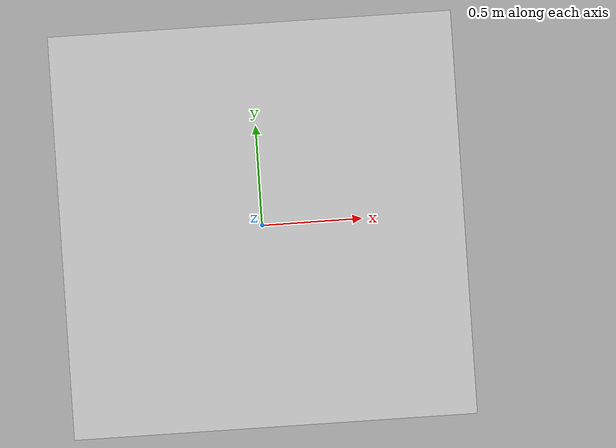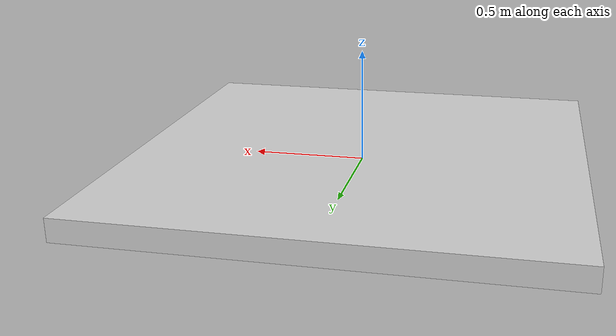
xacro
<robot name="arm_dyn" xmlns:xacro="http://wiki.ros.org/xacro">

    <!-- Mechanical arm parameters -->
    <xacro:property name="pi" value="3.14159265358979" />
    <xacro:property name="joint_lower" value="${-pi}" />
    <xacro:property name="joint_upper" value="${pi}" />
    <xacro:property name="M5210_effort" value="15" />
    <xacro:property name="M5210_velocity" value="1.047197551" />
    <xacro:property name="M4010_effort" value="4" />
    <xacro:property name="M4010_velocity" value="1.047197551" />
    <xacro:property name="fixed_block_high" value="0.1" />
    <xacro:property name="fixed_block_length" value="2" />
    <xacro:property name="fixed_block_wide" value="2" />

    <xacro:macro name="Box_inertial_matrix" params="m l w h">
       <inertial>
            <mass value="${m}" />
            <inertia ixx="${m*(h*h + l*l)/12}" ixy = "0" ixz = "0"
                iyy="${m*(w*w + l*l)/12}" iyz= "0"
                izz="${m*(w*w + h*h)/12}" />
       </inertial>
   </xacro:macro>

    <!-- Fixed block -->
    <link name="fixed_block_link">
        <!-- visualization -->
        <visual>
            <!-- appearance -->
            <geometry>
                <box size="${fixed_block_length} ${fixed_block_wide} ${fixed_block_high}" />   <!-- Import external models -->
            </geometry>
            <origin xyz="0 0 0" rpy="0 0 0" />    <!-- Linkage offset -->

            <!-- texture of material -->
            <material name="">
                <color rgba="0.8 0.8 0.8 1" />    <!-- colour -->
            </material>
        </visual>

        <!-- Collision matrix -->
        <collision>
            <!-- appearance -->
            <geometry>
                <box size="${fixed_block_length} ${fixed_block_wide} ${fixed_block_high}" />
            </geometry>
            <origin xyz="0 0 0" rpy="0 0 0" />
        </collision>

        <!-- Inertia matrix -->
        <xacro:Box_inertial_matrix m="1000" l="${fixed_block_length}" w="${fixed_block_wide}" h="${fixed_block_high}" />
    </link>

    <gazebo reference="fixed_block_link">
        <material>Gazebo/Grey</material>
    </gazebo>
</robot>
